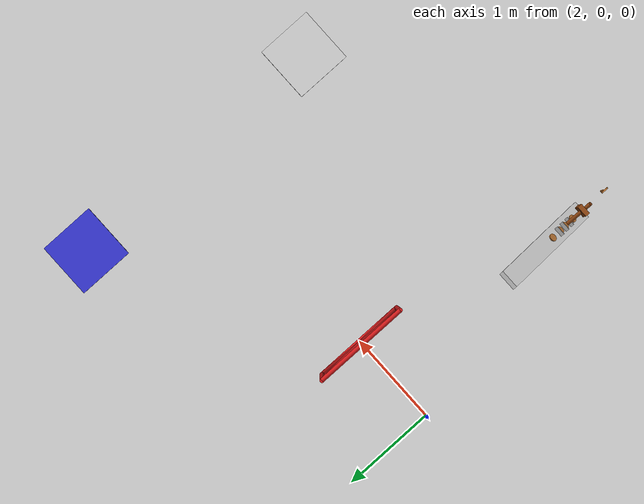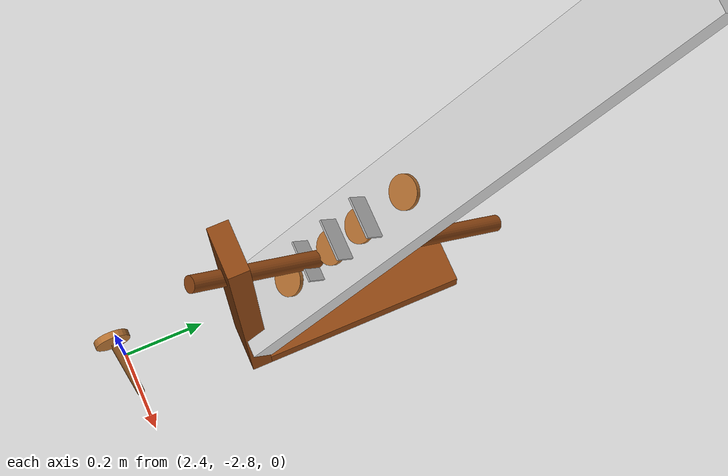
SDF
<sdf version="1.7">
 <world name="default">
  <model name="ground_plane">
   <static>1</static>
   <link name="link">
    <collision name="collision">
     <geometry><plane><normal>0 0 1</normal><size>100 100</size></plane></geometry>
     <surface>
      <contact><collide_bitmask>65535</collide_bitmask></contact>
      <friction><ode><mu>100</mu><mu2>50</mu2></ode></friction>
     </surface>
    </collision>
    <visual name="visual">
     <cast_shadows>0</cast_shadows>
     <geometry><plane><normal>0 0 1</normal><size>100 100</size></plane></geometry>
     <material>
      <script><uri>file://media/materials/scripts/gazebo.material</uri><name>Gazebo/Grey</name></script>
     </material>
    </visual>
   </link>
  </model>
  <model name="landing_platform_fixed">
   <static>1</static>
   <link name="platform">
    <pose>0 0 0.025 0 -0 0</pose>
    <collision name="col"><geometry><box><size>0.6 0.6 0.05</size></box></geometry></collision>
    <visual name="vis">
     <geometry><box><size>0.6 0.6 0.05</size></box></geometry>
     <material>
      <ambient>0.8 0.8 0.8 1</ambient>
      <diffuse>0.8 0.8 0.8 1</diffuse>
      <pbr><metal><albedo_map>materials/textures/aruco_markers/id_0_takeoff.png</albedo_map></metal></pbr>
     </material>
    </visual>
   </link>
   <pose>5.5 -1.5 0 0 -0 0</pose>
  </model>
  <model name="pipe_obstacle">
   <static>1</static>
   <link name="post_left">
    <pose>0 -0.5 1 0 -0 0</pose>
    <collision name="col">
     <geometry><cylinder><radius>0.0225</radius><length>2</length></cylinder></geometry>
    </collision>
    <visual name="vis">
     <geometry><cylinder><radius>0.0225</radius><length>2</length></cylinder></geometry>
     <material><ambient>0.8 0.1 0.1 1</ambient><diffuse>0.8 0.1 0.1 1</diffuse></material>
    </visual>
   </link>
   <link name="post_right">
    <pose>0 0.5 1 0 -0 0</pose>
    <collision name="col">
     <geometry><cylinder><radius>0.0225</radius><length>2</length></cylinder></geometry>
    </collision>
    <visual name="vis">
     <geometry><cylinder><radius>0.0225</radius><length>2</length></cylinder></geometry>
     <material><ambient>0.8 0.1 0.1 1</ambient><diffuse>0.8 0.1 0.1 1</diffuse></material>
    </visual>
   </link>
   <link name="diag_1">
    <pose>0 0 1 -0.4636 0 0</pose>
    <collision name="col">
     <geometry><cylinder><radius>0.0225</radius><length>2.236</length></cylinder></geometry>
    </collision>
    <visual name="vis">
     <geometry><cylinder><radius>0.0225</radius><length>2.236</length></cylinder></geometry>
     <material><ambient>0.8 0.1 0.1 1</ambient><diffuse>0.8 0.1 0.1 1</diffuse></material>
    </visual>
   </link>
   <link name="diag_2">
    <pose>0 0 1 0.4636 -0 0</pose>
    <collision name="col">
     <geometry><cylinder><radius>0.0225</radius><length>2.236</length></cylinder></geometry>
    </collision>
    <visual name="vis">
     <geometry><cylinder><radius>0.0225</radius><length>2.236</length></cylinder></geometry>
     <material><ambient>0.8 0.1 0.1 1</ambient><diffuse>0.8 0.1 0.1 1</diffuse></material>
    </visual>
   </link>
   <link name="top_beam">
    <pose>0 0 2 1.5708 -0 0</pose>
    <collision name="col">
     <geometry><cylinder><radius>0.0225</radius><length>1</length></cylinder></geometry>
    </collision>
    <visual name="vis">
     <geometry><cylinder><radius>0.0225</radius><length>1</length></cylinder></geometry>
     <material><ambient>0.8 0.1 0.1 1</ambient><diffuse>0.8 0.1 0.1 1</diffuse></material>
    </visual>
   </link>
   <link name="bot_beam">
    <pose>0 0 0.05 1.5708 -0 0</pose>
    <collision name="col">
     <geometry><cylinder><radius>0.0225</radius><length>1</length></cylinder></geometry>
    </collision>
    <visual name="vis">
     <geometry><cylinder><radius>0.0225</radius><length>1</length></cylinder></geometry>
     <material><ambient>0.8 0.1 0.1 1</ambient><diffuse>0.8 0.1 0.1 1</diffuse></material>
    </visual>
   </link>
   <pose>3 0 0 0 -0 0</pose>
  </model>
  <model name="landing_platform_moving">
   <link name="base">
    <pose>0 0.5 0.025 0 -0 0</pose>
    <inertial>
     <mass>5</mass>
     <inertia><ixx>0.151</ixx><iyy>0.151</iyy><izz>0.3</izz><ixy>0</ixy><ixz>0</ixz><iyz>0</iyz></inertia>
    </inertial>
    <collision name="col">
     <geometry><box><size>0.6 0.6 0.05</size></box></geometry>
     <surface>
      <friction><ode><mu>0</mu><mu2>0</mu2></ode></friction>
      <contact><ode><max_vel>0</max_vel></ode></contact>
     </surface>
    </collision>
    <visual name="vis">
     <geometry><box><size>0.6 0.6 0.05</size></box></geometry>
     <material>
      <ambient>0.2 0.2 0.8 1</ambient>
      <diffuse>0.2 0.2 0.8 1</diffuse>
      <pbr><metal><albedo_map>materials/textures/aruco_markers/id_1_landing.png</albedo_map></metal></pbr>
     </material>
    </visual>
   </link>
   <joint name="world_joint" type="prismatic">
    <parent>world</parent>
    <child>base</child>
    <axis>
     <xyz>0 1 0</xyz>
     <dynamics>
      <spring_reference>0</spring_reference>
      <spring_stiffness>3.09</spring_stiffness>
      <damping>0.5</damping>
     </dynamics>
     <limit><lower>-0.6</lower><upper>0.6</upper></limit>
    </axis>
   </joint>
   <pose>5.49112 0.928316 0 -0 -0 -0</pose>
  </model>
  <model name="wind_turbine_blade">
   <static>1</static>
   <link name="stand_vertical">
    <pose>0 0 0.4 0 -0 0</pose>
    <collision name="col"><geometry><box><size>0.05 0.12 0.8</size></box></geometry></collision>
    <visual name="vis">
     <geometry><box><size>0.05 0.12 0.8</size></box></geometry>
     <material><ambient>0.55 0.27 0.07 1</ambient><diffuse>0.55 0.27 0.07 1</diffuse></material>
    </visual>
   </link>
   <link name="stand_base">
    <pose>0.2615 0 0.025 0 -0 0</pose>
    <collision name="col"><geometry><box><size>0.523 0.12 0.05</size></box></geometry></collision>
    <visual name="vis">
     <geometry><box><size>0.523 0.12 0.05</size></box></geometry>
     <material><ambient>0.55 0.27 0.07 1</ambient><diffuse>0.55 0.27 0.07 1</diffuse></material>
    </visual>
   </link>
   <link name="stand_brace">
    <pose>0.274 0 0.425 0 -0.9827 0</pose>
    <collision name="col">
     <geometry><cylinder><radius>0.02</radius><length>0.898</length></cylinder></geometry>
    </collision>
    <visual name="vis">
     <geometry><cylinder><radius>0.02</radius><length>0.898</length></cylinder></geometry>
     <material><ambient>0.55 0.27 0.07 1</ambient><diffuse>0.55 0.27 0.07 1</diffuse></material>
    </visual>
   </link>
   <link name="blade">
    <pose>0.513 0 0.763 0 -0.7854 0</pose>
    <collision name="col"><geometry><box><size>1.45 0.2 0.06</size></box></geometry></collision>
    <visual name="vis">
     <geometry><box><size>1.45 0.2 0.06</size></box></geometry>
     <material><ambient>0.85 0.85 0.85 1</ambient><diffuse>0.85 0.85 0.85 1</diffuse></material>
    </visual>
   </link>
   <link name="aruco_id4">
    <pose>0.185 0 0.476 0 -0.7854 0</pose>
    <visual name="vis">
     <geometry><box><size>0.005 0.1 0.1</size></box></geometry>
     <material>
      <pbr><metal><albedo_map>materials/textures/aruco_markers/id_4_wind.png</albedo_map></metal></pbr>
     </material>
    </visual>
   </link>
   <link name="aruco_id5">
    <pose>0.255 0 0.547 0 -0.7854 0</pose>
    <visual name="vis">
     <geometry><box><size>0.005 0.1 0.1</size></box></geometry>
     <material>
      <pbr><metal><albedo_map>materials/textures/aruco_markers/id_5_wind.png</albedo_map></metal></pbr>
     </material>
    </visual>
   </link>
   <link name="aruco_id6">
    <pose>0.326 0 0.618 0 -0.7854 0</pose>
    <visual name="vis">
     <geometry><box><size>0.005 0.1 0.1</size></box></geometry>
     <material>
      <pbr><metal><albedo_map>materials/textures/aruco_markers/id_6_wind.png</albedo_map></metal></pbr>
     </material>
    </visual>
   </link>
   <link name="copper_1">
    <pose>0.12 0 0.413 0 -0.7854 0</pose>
    <collision name="col">
     <geometry><cylinder><radius>0.04</radius><length>0.02</length></cylinder></geometry>
    </collision>
    <visual name="vis">
     <geometry><cylinder><radius>0.04</radius><length>0.02</length></cylinder></geometry>
     <material><ambient>0.72 0.45 0.2 1</ambient><diffuse>0.72 0.45 0.2 1</diffuse></material>
    </visual>
   </link>
   <link name="copper_2">
    <pose>0.227 0 0.519 0 -0.7854 0</pose>
    <collision name="col">
     <geometry><cylinder><radius>0.04</radius><length>0.02</length></cylinder></geometry>
    </collision>
    <visual name="vis">
     <geometry><cylinder><radius>0.04</radius><length>0.02</length></cylinder></geometry>
     <material><ambient>0.72 0.45 0.2 1</ambient><diffuse>0.72 0.45 0.2 1</diffuse></material>
    </visual>
   </link>
   <link name="copper_3">
    <pose>0.297 0 0.59 0 -0.7854 0</pose>
    <collision name="col">
     <geometry><cylinder><radius>0.04</radius><length>0.02</length></cylinder></geometry>
    </collision>
    <visual name="vis">
     <geometry><cylinder><radius>0.04</radius><length>0.02</length></cylinder></geometry>
     <material><ambient>0.72 0.45 0.2 1</ambient><diffuse>0.72 0.45 0.2 1</diffuse></material>
    </visual>
   </link>
   <link name="copper_4">
    <pose>0.403 0 0.696 0 -0.7854 0</pose>
    <collision name="col">
     <geometry><cylinder><radius>0.04</radius><length>0.02</length></cylinder></geometry>
    </collision>
    <visual name="vis">
     <geometry><cylinder><radius>0.04</radius><length>0.02</length></cylinder></geometry>
     <material><ambient>0.72 0.45 0.2 1</ambient><diffuse>0.72 0.45 0.2 1</diffuse></material>
    </visual>
   </link>
   <link name="ring_post">
    <pose>-0.3 0 0.25 0 -0 0</pose>
    <collision name="col">
     <geometry><cylinder><radius>0.01</radius><length>0.5</length></cylinder></geometry>
    </collision>
    <visual name="vis">
     <geometry><cylinder><radius>0.01</radius><length>0.5</length></cylinder></geometry>
     <material><ambient>0.72 0.45 0.2 1</ambient><diffuse>0.72 0.45 0.2 1</diffuse></material>
    </visual>
   </link>
   <link name="ring">
    <pose>-0.3 0 0.51 1.5708 -0 0</pose>
    <collision name="col">
     <geometry><cylinder><radius>0.04</radius><length>0.015</length></cylinder></geometry>
    </collision>
    <visual name="vis">
     <geometry><cylinder><radius>0.04</radius><length>0.015</length></cylinder></geometry>
     <material><ambient>0.72 0.45 0.2 1</ambient><diffuse>0.72 0.45 0.2 1</diffuse></material>
    </visual>
   </link>
   <pose>2.5 -2.5 0 0 -0 1.5708</pose>
  </model>
 </world>
</sdf>
